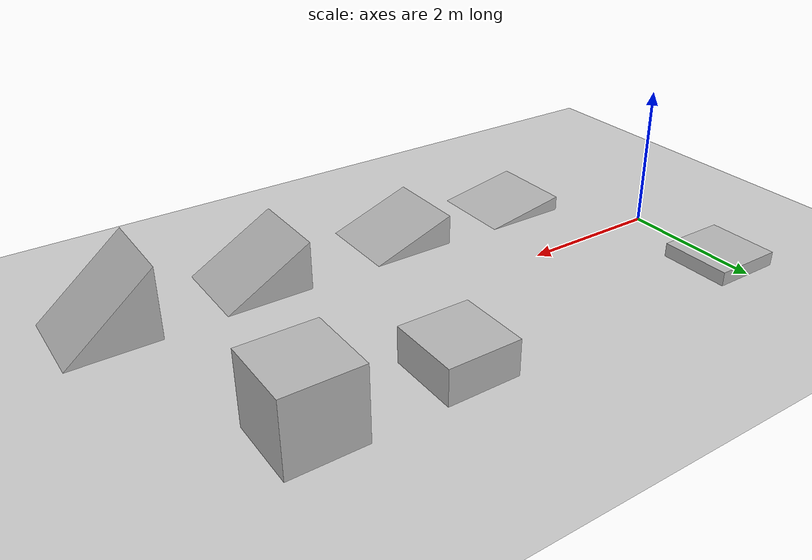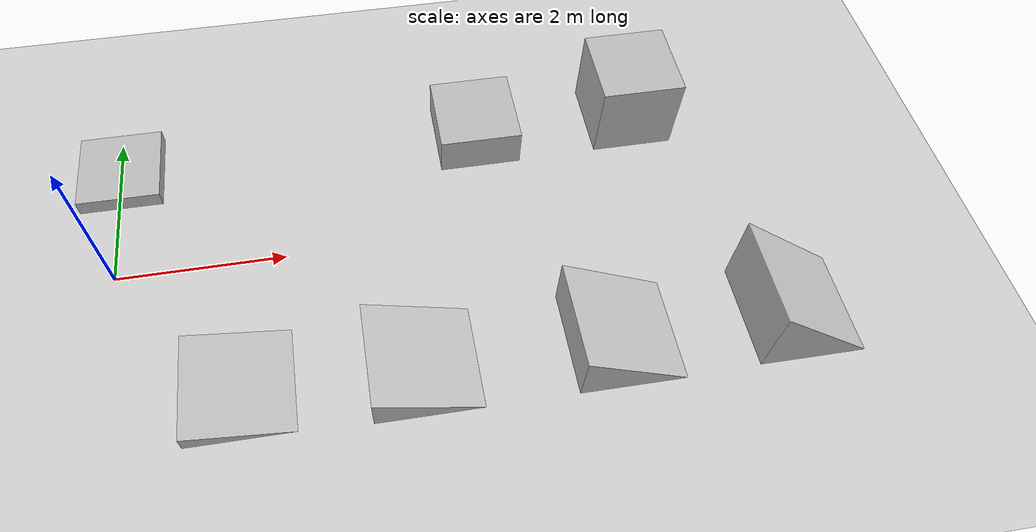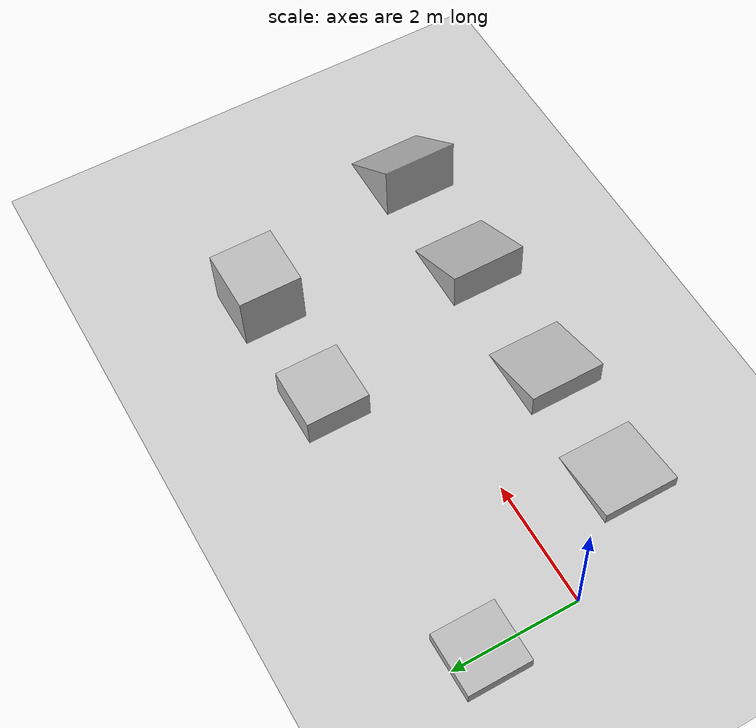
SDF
<sdf version="1.7">
 <world name="default">
  <light name="sun" type="directional">
   <pose>0 0 10 0 -0 0</pose>
   <diffuse>0.8 0.8 0.8 1</diffuse>
   <specular>0.2 0.2 0.2 1</specular>
   <attenuation>
    <range>1000</range>
    <constant>0.9</constant>
    <linear>0.01</linear>
    <quadratic>0.001</quadratic>
   </attenuation>
   <direction>-0.5 0.1 -0.9</direction>
   <spot><inner_angle>0</inner_angle><outer_angle>0</outer_angle><falloff>0</falloff></spot>
  </light>
  <model name="ground_plane">
   <static>1</static>
   <link name="link">
    <collision name="collision">
     <geometry><plane><normal>0 0 1</normal><size>100 100</size></plane></geometry>
     <surface>
      <contact><collide_bitmask>65535</collide_bitmask></contact>
      <friction><ode><mu>100</mu><mu2>50</mu2></ode></friction>
     </surface>
    </collision>
    <visual name="visual">
     <cast_shadows>0</cast_shadows>
     <geometry><plane><normal>0 0 1</normal><size>100 100</size></plane></geometry>
     <material>
      <script><uri>file://media/materials/scripts/gazebo.material</uri><name>Gazebo/Grey</name></script>
     </material>
    </visual>
   </link>
  </model>
  <gravity>0 0 -9.8</gravity>
  <magnetic_field>6e-06 2.3e-05 -4.2e-05</magnetic_field>
  <atmosphere type="adiabatic"/>
  <physics type="ode">
   <max_step_size>0.001</max_step_size>
   <real_time_factor>1</real_time_factor>
   <real_time_update_rate>1000</real_time_update_rate>
  </physics>
  <scene><ambient>0.4 0.4 0.4 1</ambient><background>0.7 0.7 0.7 1</background><shadows>1</shadows></scene>
  <spherical_coordinates>
   <surface_model>EARTH_WGS84</surface_model>
   <latitude_deg>0</latitude_deg>
   <longitude_deg>0</longitude_deg>
   <elevation>0</elevation>
   <heading_deg>0</heading_deg>
  </spherical_coordinates>
  <model name="20cmstep">
   <static>1</static>
   <pose>0.02995 1.5139 0 0 -0 0</pose>
   <link name="link">
    <collision name="collision">
     <geometry><mesh><scale>0.5 0.5 0.5</scale><uri>model://20cmstep/20cmstep.stl</uri></mesh></geometry>
     <surface><friction><ode><mu>1.2</mu><mu2>1.2</mu2></ode></friction></surface>
    </collision>
    <visual name="visual">
     <geometry><mesh><scale>0.5 0.5 0.5</scale><uri>model://20cmstep/20cmstep.stl</uri></mesh></geometry>
    </visual>
   </link>
  </model>
  <model name="50cmstep">
   <static>1</static>
   <pose>4.50632 1.50608 0 0 -0 0</pose>
   <link name="link">
    <collision name="collision">
     <geometry><mesh><scale>0.5 0.5 0.5</scale><uri>model://50cmstep/50cmstep.stl</uri></mesh></geometry>
     <surface><friction><ode><mu>1.2</mu><mu2>1.2</mu2></ode></friction></surface>
    </collision>
    <visual name="visual">
     <geometry><mesh><scale>0.5 0.5 0.5</scale><uri>model://50cmstep/50cmstep.stl</uri></mesh></geometry>
    </visual>
   </link>
  </model>
  <model name="1mcube">
   <static>1</static>
   <pose>6.49097 1.53246 0 0 -0 0</pose>
   <link name="link">
    <collision name="collision">
     <geometry><mesh><scale>0.5 0.5 0.5</scale><uri>model://1mcube/1mcube.stl</uri></mesh></geometry>
     <surface><friction><ode><mu>1.2</mu><mu2>1.2</mu2></ode></friction></surface>
    </collision>
    <visual name="visual">
     <geometry><mesh><scale>0.5 0.5 0.5</scale><uri>model://1mcube/1mcube.stl</uri></mesh></geometry>
    </visual>
   </link>
  </model>
  <model name="10degramp">
   <static>1</static>
   <pose>2.00105 -2.16824 0 0 -0 0</pose>
   <link name="link">
    <collision name="collision">
     <geometry><mesh><scale>0.001 0.001 0.001</scale><uri>model://10degramp/10degramp.stl</uri></mesh></geometry>
     <surface><friction><ode><mu>1.2</mu><mu2>1.2</mu2></ode></friction></surface>
    </collision>
    <visual name="visual">
     <geometry><mesh><scale>0.001 0.001 0.001</scale><uri>model://10degramp/10degramp.stl</uri></mesh></geometry>
    </visual>
   </link>
  </model>
  <model name="20degramp">
   <static>1</static>
   <pose>3.99844 -2.20668 0 0 -0 0</pose>
   <link name="link">
    <collision name="collision">
     <geometry><mesh><scale>0.001 0.001 0.001</scale><uri>model://20degramp/20degramp.stl</uri></mesh></geometry>
     <surface><friction><ode><mu>1.2</mu><mu2>1.2</mu2></ode></friction></surface>
    </collision>
    <visual name="visual">
     <geometry><mesh><scale>0.001 0.001 0.001</scale><uri>model://20degramp/20degramp.stl</uri></mesh></geometry>
    </visual>
   </link>
  </model>
  <model name="30degramp">
   <static>1</static>
   <pose>6.22496 -2.2059 0 0 -0 0</pose>
   <link name="link">
    <collision name="collision">
     <geometry><mesh><scale>0.001 0.001 0.001</scale><uri>model://30degramp/30degramp.stl</uri></mesh></geometry>
     <surface><friction><ode><mu>1.2</mu><mu2>1.2</mu2></ode></friction></surface>
    </collision>
    <visual name="visual">
     <geometry><mesh><scale>0.001 0.001 0.001</scale><uri>model://30degramp/30degramp.stl</uri></mesh></geometry>
    </visual>
   </link>
  </model>
  <model name="40degramp">
   <static>1</static>
   <pose>8.26027 -2.1787 0 0 -0 0</pose>
   <link name="link">
    <collision name="collision">
     <geometry><mesh><scale>0.001 0.001 0.001</scale><uri>model://40degramp/40degramp.stl</uri></mesh></geometry>
     <surface><friction><ode><mu>1.2</mu><mu2>1.2</mu2></ode></friction></surface>
    </collision>
    <visual name="visual">
     <geometry><mesh><scale>0.001 0.001 0.001</scale><uri>model://40degramp/40degramp.stl</uri></mesh></geometry>
    </visual>
   </link>
  </model>
 </world>
</sdf>
